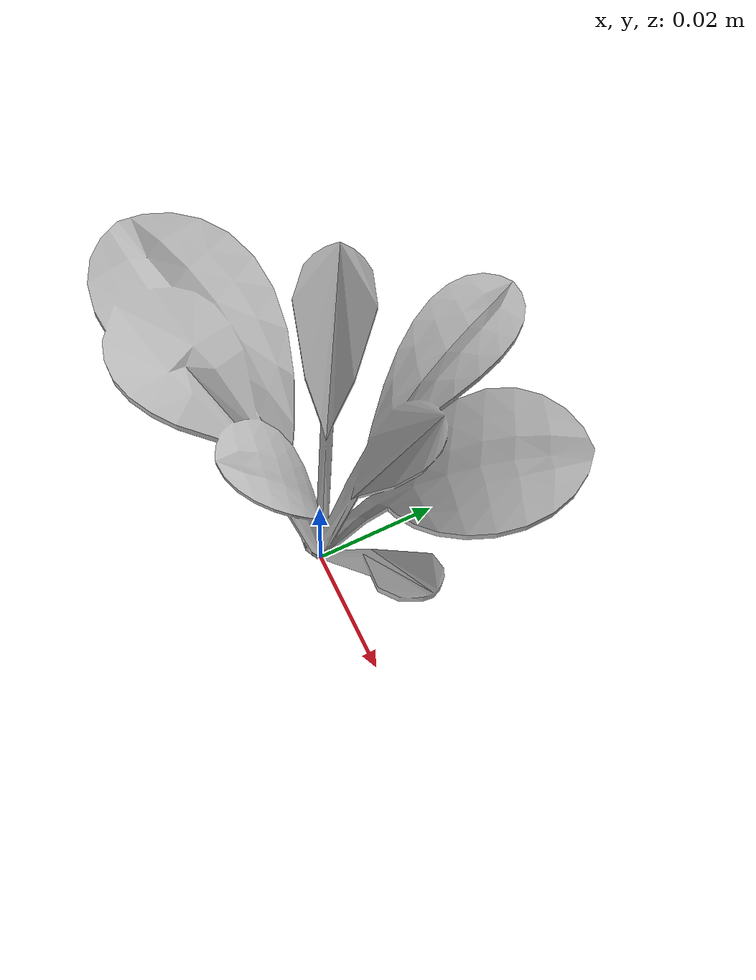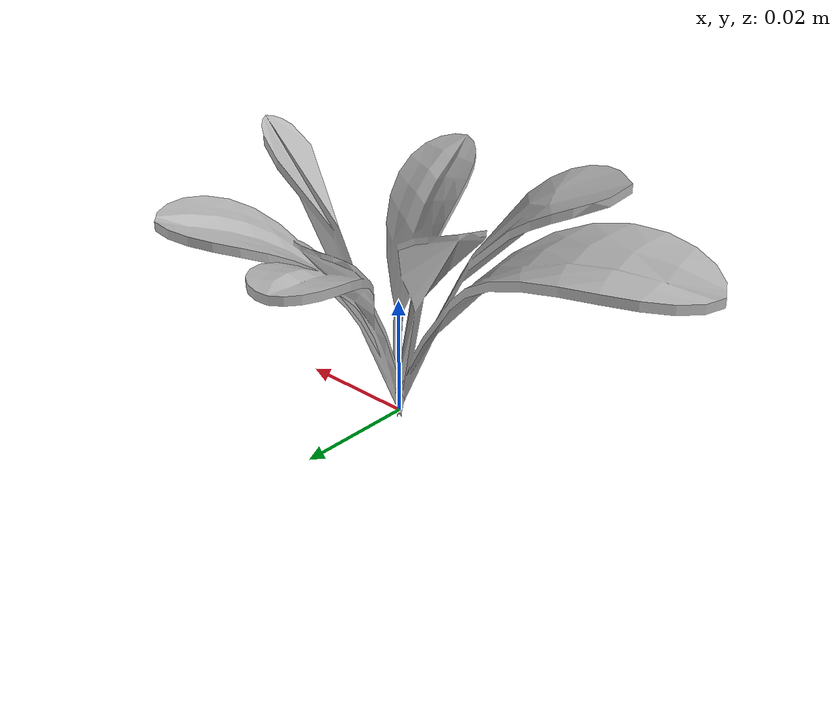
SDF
<sdf version="1.6">
  <model name="sugar_beet_56">
    <static>true</static>
    <link name="body">
      <visual name="visual">
        <geometry>
          <mesh>
            <uri>file:///sugar_beet_56/media/sugar_beet.dae</uri>
          </mesh>
        </geometry>
      </visual>
    </link>
  </model>
</sdf>
